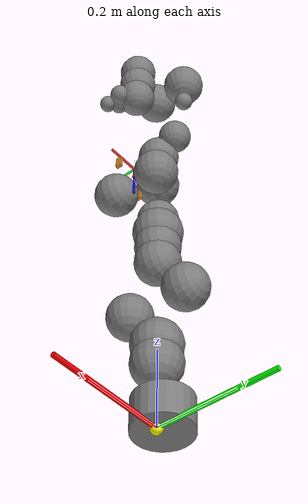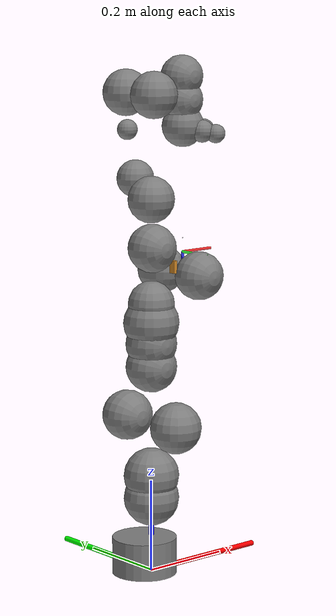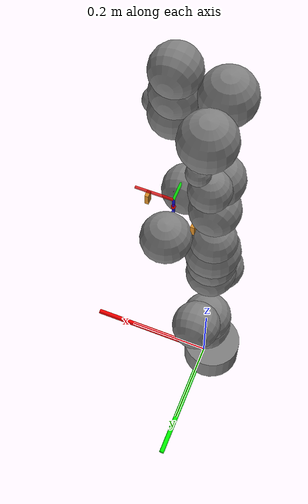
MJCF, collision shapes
<mujoco model="fr3_H_gripper">
  <compiler angle="radian" meshdir="assets" />
  <option integrator="implicitfast" timestep="0.001" solver="Newton" iterations="100" jacobian="auto" tolerance="1e-8" cone="pyramidal" impratio="1" gravity="0 0 -9.81" />
  <option>
    <flag gravity="enable" override="enable" multiccd="enable" />
  </option>
  <default>
    <default class="fr3">
      <joint damping="0.21" armature="0.195" />
      <default class="visual_fr3">
        <geom type="mesh" group="2" contype="0" conaffinity="0" />
      </default>
      <default class="collision">
        <geom type="mesh" group="3" mass="0" density="0" />
      </default>
      <site size="0.001" rgba="0.5 0.5 0.5 0.3" group="4" />
    </default>
    <default class="H_gripper">
      <joint armature="0.1" damping="1.0" />
      <default class="visual">
        <geom type="mesh" contype="0" conaffinity="0" group="1" />
      </default>
      <default class="fingertip_pad_collision_1">
        <geom type="box" group="2" size="0.004 0.007 0.0135" contype="1" conaffinity="1" mass="0.01" pos="0.012 0.0 0.018" solref="0.02 1" solimp="0.95 0.99 0.001" friction="1.0 0.02 0.01" priority="3" rgba="1 0 0 0.5" />
      </default>
      <default class="fingertip_pad_collision_2">
        <geom type="box" group="2" size="0.004 0.007 0.0135" contype="1" conaffinity="1" mass="0.01" pos="-0.012 0.0 0.018" solref="0.02 1" solimp="0.95 0.99 0.001" friction="1.0 0.02 0.01" priority="3" rgba="1 0 0 0.5" />
      </default>
      <default class="rotate_A_link_collision">
        <geom type="box" group="2" size="0.025 0.015 0.025" contype="1" conaffinity="1" mass="0.01" pos="0.085 0 -0.003" solref="0.02 1" solimp="0.95 0.99 0.001" friction="1.0 0.02 0.01" priority="3" rgba="1 0 0 0.5" />
      </default>
      <default class="rotate_B_link_collision">
        <geom type="box" group="2" size="0.025 0.012 0.01" contype="1" conaffinity="1" mass="0.01" pos="-0.085 0.032 0.01" solref="0.02 1" solimp="0.95 0.99 0.001" friction="1.0 0.02 0.01" priority="3" rgba="1 0 0 0.5" />
      </default>
      <default class="rotate_C_link_collision">
        <geom type="box" group="2" size="0.025 0.012 0.01" contype="1" conaffinity="1" mass="0.01" pos="-0.085 -0.032 0.01" solref="0.02 1" solimp="0.95 0.99 0.001" friction="1.0 0.02 0.01" priority="3" rgba="1 0 0 0.5" />
      </default>
    </default>
  </default>
  <asset>
    <material name="black" rgba=".2 .2 .2 1" />
    <material name="white" rgba="1 1 1 1" />
    <material name="red" rgba="1 0.072272 0.039546 1" />
    <material name="gray" rgba="0.863156 0.863156 0.863157 1" />
    <material name="button_green" rgba="0.102241 0.571125 0.102242 1" />
    <material name="button_red" rgba="0.520996 0.008023 0.013702 1" />
    <material name="button_blue" rgba="0.024157 0.445201 0.737911 1" />
    <material name="off_white" rgba="0.901961 0.921569 0.929412 1" />
    <mesh file="link0_0.obj" />
    <mesh file="link0_1.obj" />
    <mesh file="link0_2.obj" />
    <mesh file="link0_3.obj" />
    <mesh file="link0_4.obj" />
    <mesh file="link0_5.obj" />
    <mesh file="link0_6.obj" />
    <mesh file="link1.obj" />
    <mesh file="link2.obj" />
    <mesh file="link3_0.obj" />
    <mesh file="link3_1.obj" />
    <mesh file="link4_0.obj" />
    <mesh file="link4_1.obj" />
    <mesh file="link5_0.obj" />
    <mesh file="link5_1.obj" />
    <mesh file="link5_2.obj" />
    <mesh file="link6_0.obj" />
    <mesh file="link6_1.obj" />
    <mesh file="link6_2.obj" />
    <mesh file="link6_3.obj" />
    <mesh file="link6_4.obj" />
    <mesh file="link6_5.obj" />
    <mesh file="link6_6.obj" />
    <mesh file="link6_7.obj" />
    <mesh file="link7_0.obj" />
    <mesh file="link7_1.obj" />
    <mesh file="link7_2.obj" />
    <mesh file="link7_3.obj" />
  </asset>
  <worldbody>
    <geom mesh="link0_0" material="black" class="visual_fr3" />
    <geom mesh="link0_1" material="white" class="visual_fr3" />
    <geom mesh="link0_2" material="white" class="visual_fr3" />
    <geom mesh="link0_3" material="white" class="visual_fr3" />
    <geom mesh="link0_4" material="white" class="visual_fr3" />
    <geom mesh="link0_5" material="red" class="visual_fr3" />
    <geom mesh="link0_6" material="black" class="visual_fr3" />
    <geom name="link0_R_col" type="cylinder" size="0.07 0.04" pos="-0.02 0 0.04" class="collision" />
    <!-- link0 (= world) frame markers: x=red, y=green, z=blue, 0.15 m each -->
    <site name="link0_origin" type="sphere" pos="0 0 0" size="0.015" rgba="1 1 0 0.9" group="1" />
    <site name="link0_frame_x" type="cylinder" pos="0.15 0 0" euler="0 1.5708 0" size="0.006 0.15" rgba="1 0 0 0.9" group="1" />
    <site name="link0_frame_y" type="cylinder" pos="0 0.15 0" euler="-1.5708 0 0" size="0.006 0.15" rgba="0 1 0 0.9" group="1" />
    <site name="link0_frame_z" type="cylinder" pos="0 0 0.115" euler="0 0 0" size="0.006 0.115" rgba="0 0 1 0.9" group="1" />
    <body name="fr3_link1" pos="0 0 0.333" childclass="fr3" gravcomp="1">
      <geom name="col_link1_0" type="sphere" size="0.055" pos="0.000 -0.080 0.000" contype="0" conaffinity="0" class="collision" />
      <geom name="col_link1_1" type="sphere" size="0.060" pos="0.000 0.000 -0.120" contype="0" conaffinity="0" class="collision" />
      <geom name="col_link1_2" type="sphere" size="0.060" pos="0.000 0.000 -0.170" contype="0" conaffinity="0" class="collision" />
      <inertial pos="4.128e-07 -0.0181251 -0.0386036" quat="0.998098 -0.0605364 0.00380499 0.0110109" mass="2.92747" diaginertia="0.0239286 0.0227246 0.00610634" />
      <joint name="fr3_joint1" axis="0 0 1" range="-2.7437 2.7437" actuatorfrcrange="-87 87" />
      <geom material="white" mesh="link1" class="visual_fr3" />
      <body name="fr3_link2" quat="1 -1 0 0" gravcomp="1">
        <geom name="col_link2_0" type="sphere" size="0.055" pos="0.000 0.000 0.080" class="collision" />
        <geom name="col_link2_1" type="sphere" size="0.055" pos="0.000 -0.120 0.000" class="collision" />
        <geom name="col_link2_2" type="sphere" size="0.055" pos="0.000 -0.170 0.000" class="collision" />
        <inertial pos="0.00318289 -0.0743222 0.00881461" quat="0.502599 0.584437 -0.465998 0.434366" mass="2.93554" diaginertia="0.0629567 0.0411924 0.0246371" />
        <joint name="fr3_joint2" axis="0 0 1" range="-1.7837 1.7837" actuatorfrcrange="-87 87" />
        <geom material="white" mesh="link2" class="visual_fr3" />
        <body name="fr3_link3" pos="0 -0.316 0" quat="1 1 0 0" gravcomp="1">
          <geom name="col_link3_0" type="sphere" size="0.050" pos="0.000 0.000 -0.060" class="collision" />
          <geom name="col_link3_1" type="sphere" size="0.060" pos="0.000 0.000 -0.100" class="collision" />
          <geom name="col_link3_2" type="sphere" size="0.052" pos="0.080 0.060 0.000" class="collision" />
          <inertial pos="0.0407016 -0.00482006 -0.0289731" quat="0.921025 -0.244161 0.155272 0.260745" mass="2.2449" diaginertia="0.0267409 0.0189869 0.0171587" />
          <joint name="fr3_joint3" axis="0 0 1" range="-2.9007 2.9007" actuatorfrcrange="-87 87" />
          <geom mesh="link3_0" material="white" class="visual_fr3" />
          <geom mesh="link3_1" material="black" class="visual_fr3" />
          <body name="fr3_link4" pos="0.0825 0 0" quat="1 1 0 0" gravcomp="1">
            <geom name="col_link4_0" type="sphere" size="0.052" pos="0.000 0.000 0.060" class="collision" />
            <geom name="col_link4_1" type="sphere" size="0.052" pos="-0.080 0.060 0.000" class="collision" />
            <inertial pos="-0.0459101 0.0630493 -0.00851879" quat="0.438018 0.803311 0.00937812 0.403414" mass="2.6156" diaginertia="0.05139 0.0372717 0.0160047" />
            <joint name="fr3_joint4" axis="0 0 1" range="-3.0421 -0.1518" actuatorfrcrange="-87 87" />
            <geom mesh="link4_0" material="white" class="visual_fr3" />
            <geom mesh="link4_1" material="black" class="visual_fr3" />
            <body name="fr3_link5" pos="-0.0825 0.384 0" quat="1 -1 0 0" gravcomp="1">
              <geom name="col_link5_0" type="sphere" size="0.050" pos="0.000 0.082 0.000" class="collision" />
              <geom name="col_link5_1" type="sphere" size="0.050" pos="0.000 0.000 -0.220" class="collision" />
              <geom name="col_link5_2" type="sphere" size="0.050" pos="0.000 -0.009 0.000" class="collision" />
              <geom name="col_link5_3" type="sphere" size="0.040" pos="0.000 0.052 -0.180" class="collision" />
              <geom name="col_link5_4" type="sphere" size="0.022" pos="0.010 0.090 -0.080" class="collision" />
              <inertial pos="-0.00160396 0.0292536 -0.0972966" quat="0.919031 0.125604 0.0751531 -0.366003" mass="2.32712" diaginertia="0.0579335 0.0449144 0.0130634" />
              <joint name="fr3_joint5" axis="0 0 1" range="-2.8065 2.8065" actuatorfrcrange="-12 12" armature="0.074" frictionloss="0.763" />
              <geom mesh="link5_0" material="white" class="visual_fr3" />
              <geom mesh="link5_1" material="white" class="visual_fr3" />
              <geom mesh="link5_2" material="black" class="visual_fr3" />
              <body name="fr3_link6" quat="1 1 0 0" gravcomp="1">
                <geom name="col_link6_0" type="sphere" size="0.045" pos="0.085 0.035 0.000" class="collision" />
                <geom name="col_link6_1" type="sphere" size="0.045" pos="0.085 -0.015 0.000" class="collision" />
                <inertial pos="0.0597131 -0.0410295 -0.0101693" quat="0.621301 0.552665 0.510011 0.220081" mass="1.81704" diaginertia="0.0175039 0.0161123 0.00193529" />
                <joint name="fr3_joint6" axis="0 0 1" range="0.5445 4.5169" actuatorfrcrange="-12 12" armature="0.074" frictionloss="0.44" />
                <geom mesh="link6_0" material="button_green" class="visual_fr3" />
                <geom mesh="link6_1" material="white" class="visual_fr3" />
                <geom mesh="link6_2" material="white" class="visual_fr3" />
                <geom mesh="link6_3" material="gray" class="visual_fr3" />
                <geom mesh="link6_4" material="button_red" class="visual_fr3" />
                <geom mesh="link6_5" material="white" class="visual_fr3" />
                <geom mesh="link6_6" material="black" class="visual_fr3" />
                <geom mesh="link6_7" material="button_blue" class="visual_fr3" />
                <body name="fr3_link7" pos="0.088 0 0" quat="1 1 0 0" gravcomp="1">
                  <geom name="col_link7_0" type="sphere" size="0.045" pos="0.000 0.000 0.070" class="collision" />
                  <geom name="col_link7_1" type="sphere" size="0.024" pos="0.020 0.040 0.080" class="collision" />
                  <geom name="col_link7_2" type="sphere" size="0.024" pos="0.040 0.020 0.080" class="collision" />
                  <geom name="col_link7_3" type="sphere" size="0.020" pos="0.040 0.060 0.085" class="collision" />
                  <inertial pos="0.00452258 0.00862619 -0.0161633" quat="0.727579 0.0978688 -0.24906 0.63168" mass="0.627143" diaginertia="0.000223836 0.000223642 5.64132e-07" />
                  <joint name="fr3_joint7" axis="0 0 1" range="-3.0159 3.0159" actuatorfrcrange="-12 12" armature="0.074" frictionloss="0.248" />
                  <geom mesh="link7_0" material="black" class="visual_fr3" />
                  <geom mesh="link7_1" material="white" class="visual_fr3" />
                  <geom mesh="link7_2" material="white" class="visual_fr3" />
                  <geom mesh="link7_3" material="black" class="visual_fr3" />
                  <site name="hand_site" pos="0 0 0.310" group="0" />
                  <site name="frame_x" type="cylinder" pos="0.04 0 0.34" euler="0 1.5708 0" size="0.003 0.04" rgba="1 0 0 0.8" group="1" />
                  <site name="frame_y" type="cylinder" pos="0 0.04 0.34" euler="1.5708 0 0" size="0.003 0.04" rgba="0 1 0 0.8" group="1" />
                  <site name="frame_z" type="cylinder" pos="0 0 0.38" euler="0 0 0" size="0.003 0.04" rgba="0 0 1 0.8" group="1" />
                  <body name="hand" pos="0 0 0.220" gravcomp="1">
                    <inertial pos="-0.009863237 -0.000073661 0.000882385" mass="1.467288630"
                              quat="0.703430392 -0.694244096 0.099431435 0.115430534"
                              diaginertia="3.022759965e-03 5.677399593e-03 7.220569646e-03"/>
                    <site name="gripper_site" type="sphere" pos="0 0 0.145" size="0.005" rgba="1 0 0 1" group="0"/>
                    <geom name="gripper_pad_1" type="box" size="0.0040 0.0070 0.0135"
                          pos="0.05407 0.00004 0.14301" contype="0" conaffinity="0" group="1"
                          rgba="0.85 0.55 0.15 0.9"/>
                    <geom name="gripper_pad_2" type="box" size="0.0040 0.0070 0.0135"
                          pos="-0.05411 0.03210 0.14301" contype="0" conaffinity="0" group="1"
                          rgba="0.85 0.55 0.15 0.9"/>
                    <geom name="gripper_pad_3" type="box" size="0.0040 0.0070 0.0135"
                          pos="-0.05412 -0.03209 0.14301" contype="0" conaffinity="0" group="1"
                          rgba="0.85 0.55 0.15 0.9"/>
                    <site name="finger1_site" pos="0.05407 0.00004 0.14501" size="0.003" rgba="1 0.6 0 1" group="0"/>
                    <site name="finger2_site" pos="-0.05411 0.03210 0.14501" size="0.003" rgba="1 0.6 0 1" group="0"/>
                    <site name="finger3_site" pos="-0.05412 -0.03209 0.14501" size="0.003" rgba="1 0.6 0 1" group="0"/>
                  </body>
                </body>
              </body>
            </body>
          </body>
        </body>
      </body>
    </body>
  </worldbody>
  <!-- RIGID GRIPPER: every exclude below pairs finger_* bodies that the
       collapse removed, so the block cannot compile. -->
  <!-- MATCH-MPPI_Reach: both constraints couple the now-welded slide joints. -->
  <actuator>
    <motor name="actuator1" joint="fr3_joint1" ctrllimited="true" ctrlrange="-87.0 87.0" />
    <motor name="actuator2" joint="fr3_joint2" ctrllimited="true" ctrlrange="-87.0 87.0" />
    <motor name="actuator3" joint="fr3_joint3" ctrllimited="true" ctrlrange="-87.0 87.0" />
    <motor name="actuator4" joint="fr3_joint4" ctrllimited="true" ctrlrange="-87.0 87.0" />
    <motor name="actuator5" joint="fr3_joint5" ctrllimited="true" ctrlrange="-12.0 12.0" />
    <motor name="actuator6" joint="fr3_joint6" ctrllimited="true" ctrlrange="-12.0 12.0" />
    <motor name="actuator7" joint="fr3_joint7" ctrllimited="true" ctrlrange="-12.0 12.0" />
    <!-- MATCH-MPPI_Reach: nu 8 -> 7. -->
  </actuator>
</mujoco>
